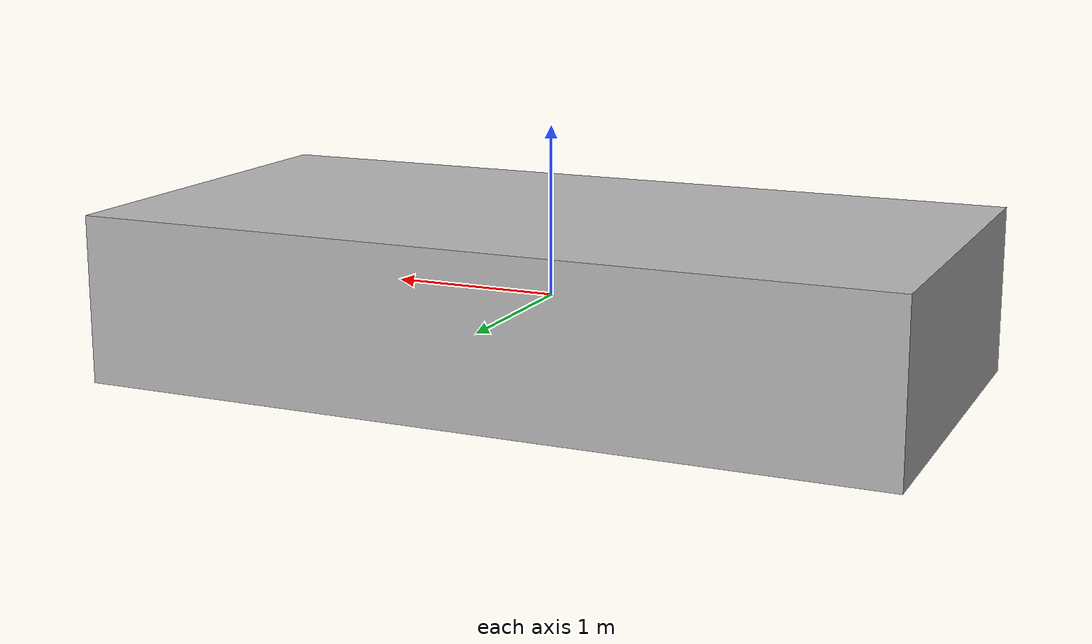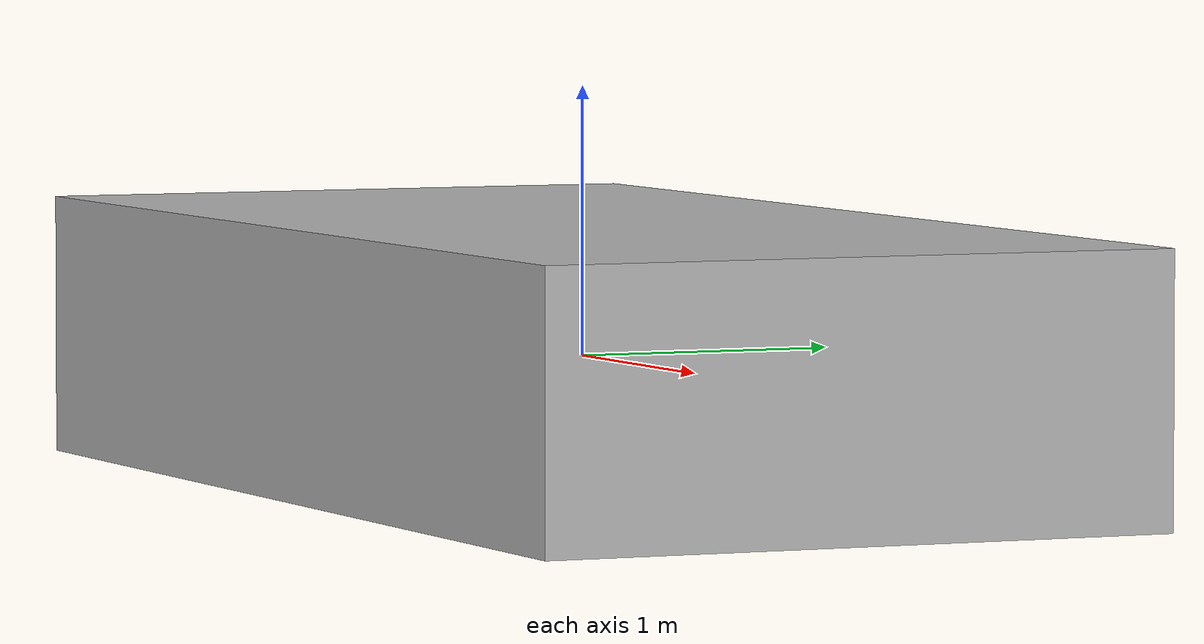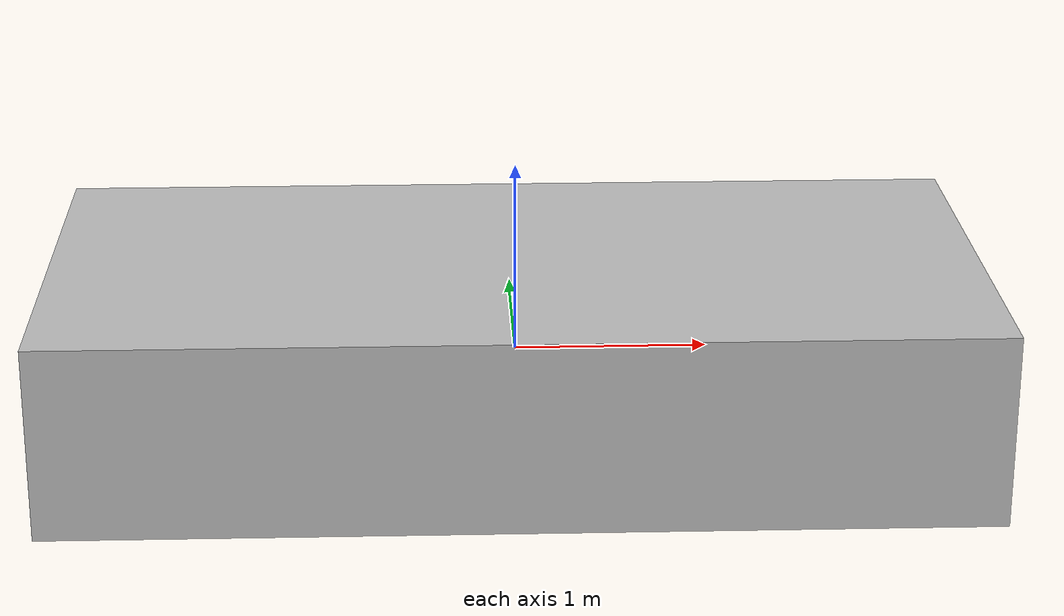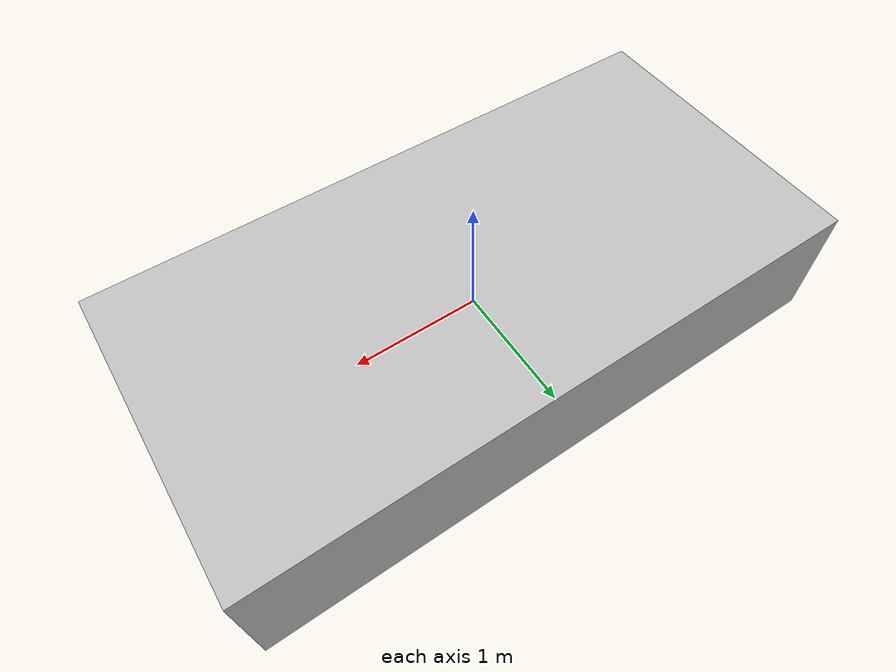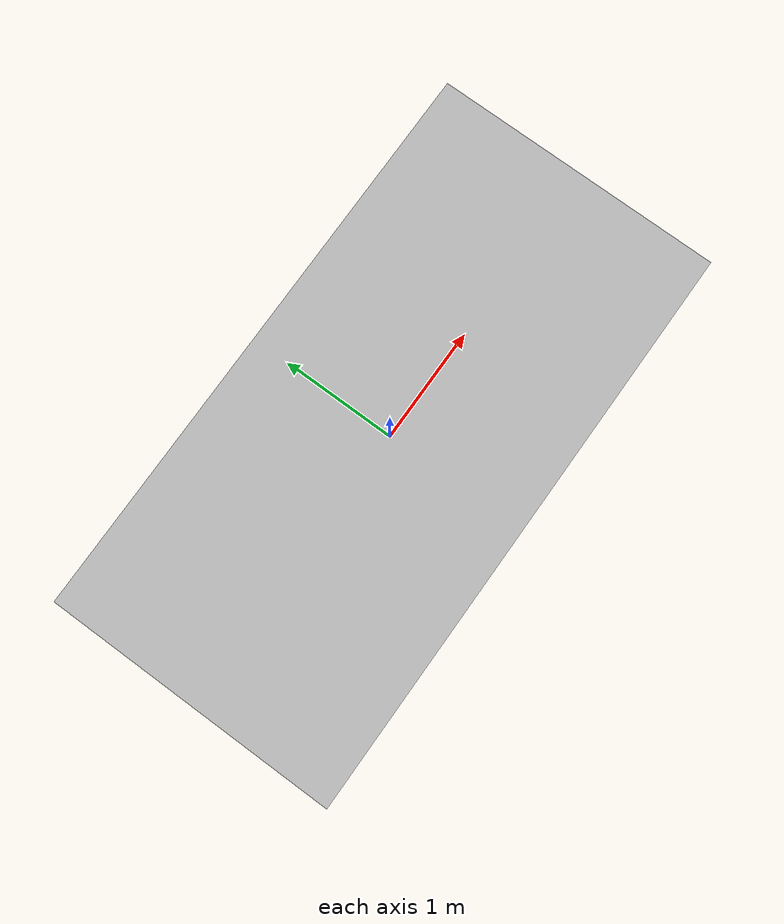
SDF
<?xml version="1.0" ?>
<sdf version="1.10">
  <model name="bcod_usv">
    <pose>0 0 0 0 0 0</pose>
    <link name="base_link">
      <inertial>
        <pose>0 0 0 0 0 0</pose>
        <mass>1000</mass>
        <inertia>
          <ixx>563.3333333333</ixx><iyy>2003.3333333333</iyy><izz>2400</izz>
          <ixy>0</ixy><ixz>0</ixz><iyz>0</iyz>
        </inertia>

      </inertial>

      <collision name="hull_collision_0">
        <pose>0 0 0 0 0 0</pose>
        <geometry><box><size>4.8 2.4 0.1693766938</size></box></geometry>
      </collision>
      <visual name="hull_visual_0">
        <pose>0 0 0 0 0 0</pose>
        <geometry><box><size>4.8 2.4 1</size></box></geometry>
      </visual>

      <sensor name="task_imu" type="imu">
        <always_on>true</always_on><update_rate>50</update_rate>
        <topic>imu</topic>
        <imu><orientation_reference_frame><localization>ENU</localization></orientation_reference_frame></imu>
      </sensor>
      <sensor name="task_gps" type="navsat">
        <always_on>true</always_on><update_rate>2</update_rate>
        <topic>gps</topic>
      </sensor>
    </link>

    <link name="port_thruster">
      <pose relative_to="base_link">0 1.2 0 0 0 0</pose>
      <inertial><mass>0.001</mass><inertia><ixx>1e-6</ixx><iyy>1e-6</iyy><izz>1e-6</izz><ixy>0</ixy><ixz>0</ixz><iyz>0</iyz></inertia></inertial>
    </link>
    <joint name="port_joint" type="revolute">
      <parent>base_link</parent>
      <child>port_thruster</child>
      <axis><xyz>1 0 0</xyz></axis>
    </joint>

    <link name="starboard_thruster">
      <pose relative_to="base_link">0 -1.2 0 0 0 0</pose>
      <inertial><mass>0.001</mass><inertia><ixx>1e-6</ixx><iyy>1e-6</iyy><izz>1e-6</izz><ixy>0</ixy><ixz>0</ixz><iyz>0</iyz></inertia></inertial>
    </link>
    <joint name="starboard_joint" type="revolute">
      <parent>base_link</parent>
      <child>starboard_thruster</child>
      <axis><xyz>1 0 0</xyz></axis>
    </joint>
    <plugin filename="gz-sim-hydrodynamics-system" name="gz::sim::systems::Hydrodynamics">
      <link_name>base_link</link_name>
      <water_density>1025</water_density>
      <xU>-80</xU>
      <yV>-450</yV>
      <zW>0</zW>
      <kP>0</kP>
      <mQ>0</mQ>
      <nR>-5520</nR>
      <xUabsU>-48.708</xUabsU>
      <yVabsV>-509.22</yVabsV>
      <zWabsW>0</zWabsW>
      <kPabsP>0</kPabsP>
      <mQabsQ>0</mQabsQ>
      <nRabsR>-2428.68</nRabsR>

    </plugin>

    <plugin filename="gz-sim-pose-publisher-system" name="gz::sim::systems::PosePublisher">
      <publish_model_pose>true</publish_model_pose>
      <publish_link_pose>true</publish_link_pose>
      <use_pose_vector_msg>true</use_pose_vector_msg>
      <static_publisher>false</static_publisher>
    </plugin>
    <plugin filename="gz-sim-sensors-system" name="gz::sim::systems::Sensors"/>

    <plugin filename="gz-sim-odometry-publisher-system" name="gz::sim::systems::OdometryPublisher">
      <odom_publish_frequency>20</odom_publish_frequency>
      <odom_topic>odometry</odom_topic>
      <dimensions>3</dimensions>
    </plugin>

      <plugin filename="gz-sim-thruster-system" name="gz::sim::systems::Thruster">
        <namespace>/</namespace>
        <joint_name>port_joint</joint_name>
        <thrust_coefficient>1</thrust_coefficient>
        <fluid_density>1025</fluid_density>
        <propeller_diameter>1</propeller_diameter>
        <use_angvel_cmd>false</use_angvel_cmd>
        <max_thrust_cmd>1200</max_thrust_cmd>
        <min_thrust_cmd>-1200</min_thrust_cmd>
        <topic>/model/bcod_usv/joint/port_joint/cmd_thrust</topic>
      </plugin>

      <plugin filename="gz-sim-thruster-system" name="gz::sim::systems::Thruster">
        <namespace>/</namespace>
        <joint_name>starboard_joint</joint_name>
        <thrust_coefficient>1</thrust_coefficient>
        <fluid_density>1025</fluid_density>
        <propeller_diameter>1</propeller_diameter>
        <use_angvel_cmd>false</use_angvel_cmd>
        <max_thrust_cmd>1200</max_thrust_cmd>
        <min_thrust_cmd>-1200</min_thrust_cmd>
        <topic>/model/bcod_usv/joint/starboard_joint/cmd_thrust</topic>
      </plugin>

  </model>
</sdf>
